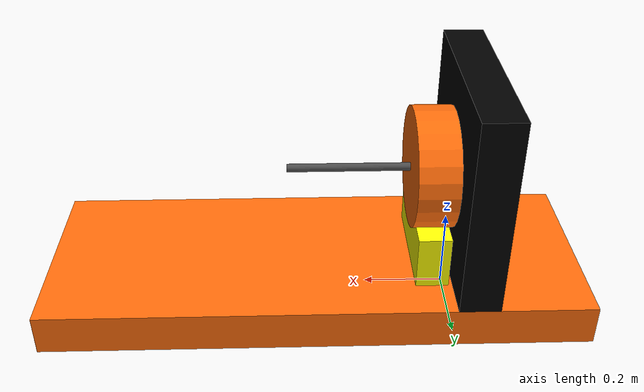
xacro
<?xml version="1.0" ?>

<robot name="needle_bot" xmlns:xacro="http://ros.org/wiki/xacro">
  <xacro:include filename="$(find needle_simulation)/urdf/common_properties.xacro"/>

  <xacro:property name="base_width" value="0.1" /> <!-- Base -->
  <xacro:property name="base_length" value="0.5" /> <!-- Base -->
  <xacro:property name="roto_linear_length" value="1" /> <!-- Motor -->
  <xacro:property name="motor_radius" value="0.15" /> <!-- Motor -->
  <xacro:property name="motor_length" value="0.1" /> <!-- Motor -->
  <xacro:property name="needle_radius" value="0.01" />
  <xacro:property name="needle_length" value="0.3" />
  <xacro:property name="needle_mass" value="0.001" />
  <xacro:property name="base_mass" value="10" />

  <!-- ros_control plugin -->
  <gazebo>
    <plugin name="gazebo_ros_control" filename="libgazebo_ros_control.so">
      <robotNamespace>/needle_bot</robotNamespace>
      <robotSimType>gazebo_ros_control/DefaultRobotHWSim</robotSimType>
    </plugin>
  </gazebo>
  <gazebo reference="base_link">
    <material>Gazebo/Orange</material>
  </gazebo>
  <gazebo reference="upper_base_link">
    <material>Gazebo/Black</material>
  </gazebo>
  <gazebo reference="prismatic_link">
    <material>Gazebo/Yellow</material>
  </gazebo>
  <gazebo reference="motor_link">
    <material>Gazebo/Orange</material>
  </gazebo>
  <gazebo reference="needle_link">
    <material>Gazebo/Black</material>
  </gazebo>

  <joint name="base_joint" type="fixed">
    <parent link="base_footprint"/>
    <child link="base_link"/>
    <origin xyz="0.0 0.0 0" rpy="0 0 0"/>
  </joint>
  <link name="base_footprint"/>

  <link name="base_link">
    <visual>
      <origin xyz="${roto_linear_length*1/3} 0 ${base_width/2}" rpy="0 0.0 0"/>
      <geometry>
        <box size="${roto_linear_length*4/3} ${base_length} ${base_width}"/>
      </geometry>
      <material name="orange"/>
    </visual>

    <collision>
      <origin xyz="${roto_linear_length*1/3} 0 ${base_width/2}" rpy="0 0.0 0"/>
      <geometry>
        <box size="${roto_linear_length*4/3} ${base_length} ${base_width}"/>
      </geometry>
      <material name="orange"/>
    </collision>

    <inertial>
      <origin xyz="${roto_linear_length*1/3} 0 ${base_width/2}" rpy="0 0 0"/>
      <mass value="${base_mass}"/>
      <inertia
	      ixx="${base_mass / 12.0 * (base_width*base_width + (roto_linear_length*4/3)*(roto_linear_length*4/3))}" ixy="0.0" ixz="0.0"
	      iyy="${base_mass / 12.0 * (base_length*base_length + base_width*base_width)}" iyz="0.0"
	      izz="${base_mass / 12.0 * (base_width*base_width + base_width*base_width)}"/>
    </inertial>
  </link>

  <joint name="upper_base_joint" type="fixed">
    <parent link="base_link"/>
    <child link="upper_base_link"/>
    <origin xyz="0.0 0.0 ${(base_length/2)+(base_width)}" rpy="0 0 0"/>
  </joint>

  <link name="upper_base_link">
    <visual>
      <origin xyz="-${base_width/2} 0 0.0" rpy="0 1.57 0"/>
      <geometry>
        <box size="${base_length} ${base_length} ${base_width}"/>
      </geometry>
      <material name="black"/>
    </visual>

    <inertial>
      <origin xyz="-${base_width/2} 0 0.0" rpy="0 1.57 0"/>
      <mass value="${base_mass}"/>
      <inertia
	      ixx="${base_mass/ 12.0 * (base_width*base_width + base_length*base_length)}" ixy="0.0" ixz="0.0"
	      iyy="${base_mass/ 12.0 * (base_length*base_length + base_width*base_width)}" iyz="0.0"
	      izz="${base_mass/ 12.0 * (base_width*base_width + base_width*base_width)}"/>
    </inertial>
  </link>

  <joint name="prismatic_joint" type="prismatic">
    <parent link="upper_base_link"/>
    <child link="prismatic_link"/>
    <origin xyz="0 0 0" rpy="0 0 0"/>
    <limit effort="30" velocity="0.1" lower="0" upper="${roto_linear_length}" />
    <axis xyz="1 0 0"/>
  </joint>

  <link name="prismatic_link">
    <visual>
      <origin xyz="${motor_length/2} 0 -${(base_length/2)-((base_width*4/3)/2)}" rpy="0 0 0"/>
      <geometry>
        <box size="${motor_length*4/5} ${motor_radius*2} ${base_width*4/3}"/>
      </geometry>
      <material name="yellow"/>
    </visual>

    <inertial>
      <origin xyz="${motor_length/2} 0 -${(base_length/2)-(base_width/4)}" />
      <mass value="2.8498940e-02" />
      <inertia ixx="1.1175580e-05" ixy="-4.2369783e-11" ixz="-5.9381719e-09"
               iyy="1.1192413e-05" iyz="-1.4400107e-11"
               izz="2.0712558e-05" />
      </inertial>
  </link>

  <joint name="motor_joint" type="revolute">
    <parent link="prismatic_link"/>
    <child link="motor_link"/>
    <limit effort="30" velocity="0.1" lower="-1.57079633" upper="1.57079633" />
    <origin xyz="0 0 0" rpy="0 0 0"/>
    <axis xyz="1 0 0"/>
  </joint>

  <link name="motor_link">
    <visual>
      <origin xyz="${motor_length/2} 0 0" rpy="0 1.57 0"/>
      <geometry>
        <cylinder length="${motor_length}" radius="${motor_radius}"/>
      </geometry>
      <material name="orange"/>
    </visual>

    <inertial>
      <origin xyz="-${base_width/2} 0 0.0" rpy="0 1.57 0"/>
      <mass value="2.8498940e-02" />
      <inertia ixx="1.1175580e-05" ixy="-4.2369783e-11" ixz="-5.9381719e-09"
               iyy="1.1192413e-05" iyz="-1.4400107e-11"
               izz="2.0712558e-05" />
      </inertial>
  </link>

  <!-- Needle Link -->
  <joint name="needle_joint" type="fixed">
    <parent link="motor_link"/>
    <child link="needle_link"/>
    <origin xyz="${motor_length} 0.0 0.0" rpy="0 0 0"/>
  </joint>

  <link name="needle_link">
    <collision>
      <origin xyz="${needle_length/2} 0 0" rpy="0 1.57 0"/>
      <geometry>
        <cylinder length="${needle_length}" radius="${needle_radius}"/>
      </geometry>
    </collision>

    <visual>
      <origin xyz="${needle_length/2} 0 0" rpy="0 1.57 0"/>
      <geometry>
        <cylinder length="${needle_length}" radius="${needle_radius}"/>
      </geometry>
      <material name="dark"/>
    </visual>

    <inertial>
      <origin xyz="${needle_length/2} 0 0" rpy="0 0 0"/>
      <mass value="${needle_mass}"/>
      <inertia
	      ixx="${needle_mass / 12.0 * ((2*needle_radius)*(2*needle_radius) + needle_length*needle_length)}" ixy="0.0" ixz="0.0"
	      iyy="${needle_mass / 12.0 * ((2*needle_radius)*(2*needle_radius) + needle_length*needle_length)}" iyz="0.0"
	      izz="${needle_mass / 12.0 * ((2*needle_radius)*(2*needle_radius) + needle_length*needle_length)}"/>
      </inertial>
  </link>

  <joint name="end_effector_joint" type="fixed">
    <parent link="needle_link"/>
    <child link="end_effector"/>
    <origin xyz="${needle_length} 0.0 0.0" rpy="0 0 0"/>
  </joint>

  <link name="end_effector"/>

  <transmission name="tran1">
    <type>transmission_interface/SimpleTransmission</type>
    <joint name="prismatic_joint">
      <hardwareInterface>hardware_interface/EffortJointInterface</hardwareInterface>
    </joint>
    <actuator name="prismatic_motor">
      <hardwareInterface>hardware_interface/EffortJointInterface</hardwareInterface>
      <mechanicalReduction>1</mechanicalReduction>
    </actuator>
  </transmission>

  <transmission name="tran2">
    <type>transmission_interface/SimpleTransmission</type>
    <joint name="motor_joint">
      <hardwareInterface>hardware_interface/EffortJointInterface</hardwareInterface>
    </joint>
    <actuator name="servo_motor">
      <hardwareInterface>hardware_interface/EffortJointInterface</hardwareInterface>
      <mechanicalReduction>1</mechanicalReduction>
    </actuator>
  </transmission>
</robot>

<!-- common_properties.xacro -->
<robot name="xacro_properties" xmlns:xacro="http://ros.org/wiki/xacro">

  <!-- Init colour -->
  <material name="black">
      <color rgba="0.0 0.0 0.0 1.0"/>
  </material>

  <material name="dark">
    <color rgba="0.3 0.3 0.3 1.0"/>
  </material>
  <material name="light_black">
    <color rgba="0.4 0.4 0.4 1.0"/>
  </material>

  <material name="blue">
    <color rgba="0.0 0.0 0.8 1.0"/>
  </material>

  <material name="green">
    <color rgba="0.0 0.8 0.0 1.0"/>
  </material>

  <material name="grey">
    <color rgba="0.5 0.5 0.5 1.0"/>
  </material>

  <material name="yellow">
    <color rgba="1.0 1.0 0.0 1.0"/>
  </material>

  <material name="orange">
    <color rgba="${255/255} ${108/255} ${10/255} 1.0"/>
  </material>

  <material name="brown">
    <color rgba="${222/255} ${207/255} ${195/255} 1.0"/>
  </material>

  <material name="red">
    <color rgba="0.8 0.0 0.0 1.0"/>
  </material>

  <material name="white">
    <color rgba="1.0 1.0 1.0 1.0"/>
  </material>
</robot>
